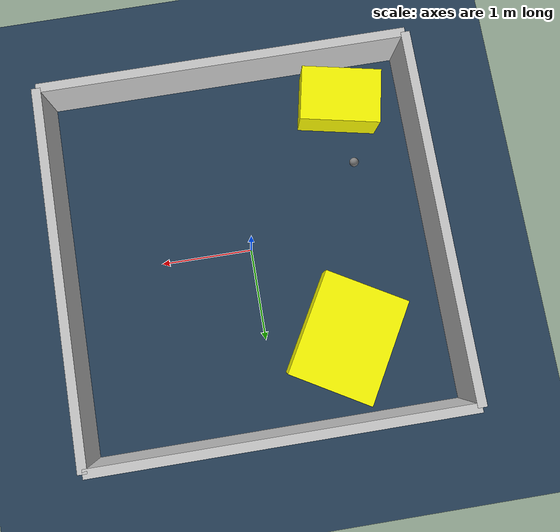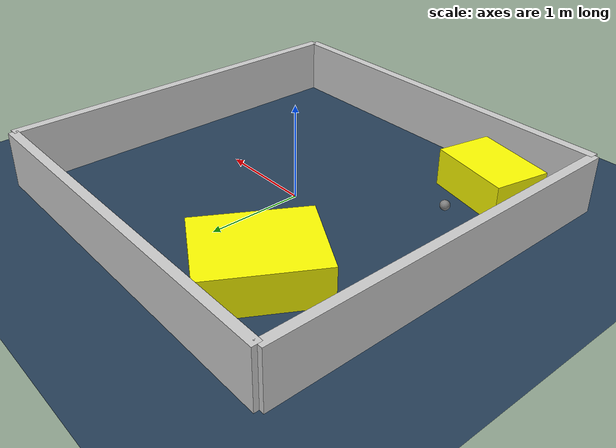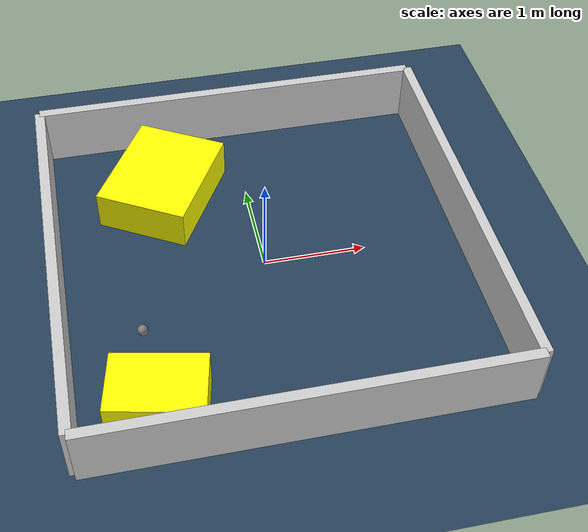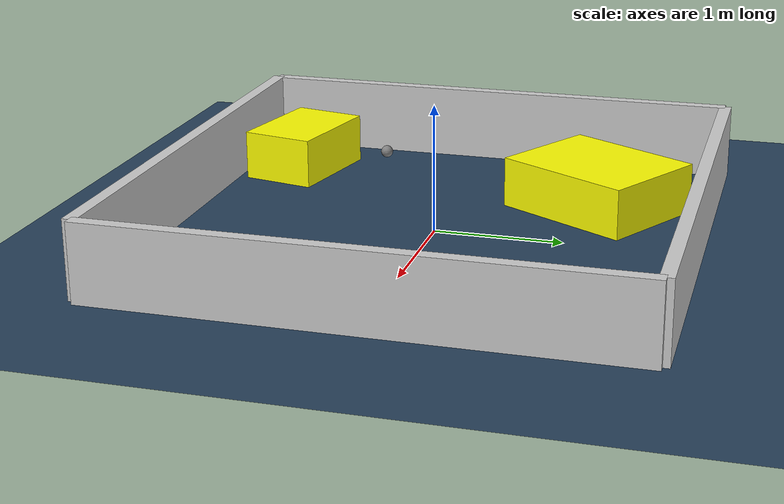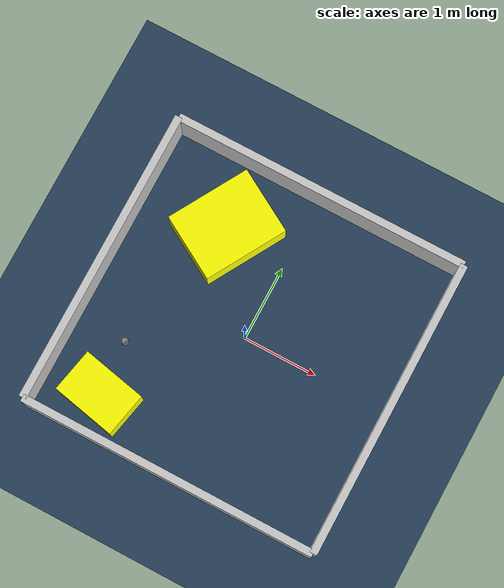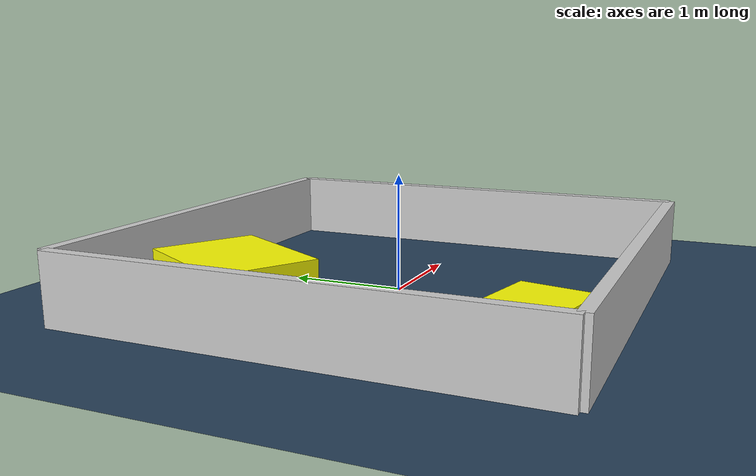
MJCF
<?xml version="1.0" ?>
<mujoco model="generated_environment">
  <option timestep="0.01" integrator="RK4" cone="elliptic"/>
  <default>
    <geom density="1"/>
  </default>
  <asset>
    <texture builtin="gradient" height="3072" rgb1="0.3 0.5 0.7" rgb2="0 0 0" type="skybox" width="512"/>
    <texture builtin="checker" height="300" mark="edge" markrgb="0.8 0.8 0.8" name="groundplane" rgb1="0.2 0.3 0.4" rgb2="0.1 0.2 0.3" type="2d" width="300"/>
    <material name="groundplane" reflectance="0.2" texrepeat="5 5" texture="groundplane" texuniform="true"/>
    <material name="robot" rgba="0.0 1.0 0.0 1"/>
  </asset>
  <worldbody>
    <light dir="0 0 -1" directional="true" pos="0 0 1.5"/>
    <geom condim="4" friction="1.0 0.005 0.001" material="groundplane" name="floor" size="0 0 0.05" type="plane"/>
    <body name="walls">
      <geom name="wall_1" condim="4" pos="-2.0 0.0 0.3" rgba="0.800000011920929 0.800000011920929 0.800000011920929 1.0" size="0.05 2.0 0.3" type="box"/>
      <geom name="wall_2" condim="4" pos="2.0 0.0 0.3" rgba="0.800000011920929 0.800000011920929 0.800000011920929 1.0" size="0.05 2.0 0.3" type="box"/>
      <geom name="wall_3" condim="4" pos="0.0 -2.0 0.3" rgba="0.800000011920929 0.800000011920929 0.800000011920929 1.0" size="2.0 0.05 0.3" type="box"/>
      <geom name="wall_4" condim="4" pos="0.0 2.0 0.3" rgba="0.800000011920929 0.800000011920929 0.800000011920929 1.0" size="2.0 0.05 0.3" type="box"/>
    </body>
    <body name="robot">
      <joint name="joint_x" type="slide" pos="0 0 0" axis="1 0 0"/>
      <joint name="joint_y" type="slide" pos="0 0 0" axis="0 1 0"/>
      <geom name="robot" type="sphere" pos="-1.2778282095063949 -0.7647219409795871 0.2" size="0.05" mass="5." friction="1.0 0.005 0.0001" condim="4"/>
      <site name="sensor_ball"/>
    </body>
    <body name="obstacle_1_movable">
      <geom name="obstacle_1_movable" condim="4" pos="-1.2356258229751824 -1.4949615894073576 0.2" euler="0 0 348.15776650242486" friction="1.0 0.005 0.001" rgba="1 1 0 1" size="0.4371137789545303 0.30186499905976333 0.2" type="box" mass="0.1"/>
      <joint type="free"/>
    </body>
    <body name="obstacle_2_movable">
      <geom name="obstacle_2_movable" condim="4" pos="-0.8462569520847664 1.1155883342544708 0.2" euler="0 0 149.9724034136486" friction="1.0 0.005 0.001" rgba="1 1 0 1" size="0.46296406027354436 0.5780620155310634 0.2" type="box" mass="0.1"/>
      <joint type="free"/>
    </body>
  </worldbody>
  <actuator>
    <motor name="actuator_x" joint="joint_x" gear="1" ctrlrange="-1 1"/>
    <motor name="actuator_y" joint="joint_y" gear="1" ctrlrange="-1 1"/>
  </actuator>
</mujoco>
